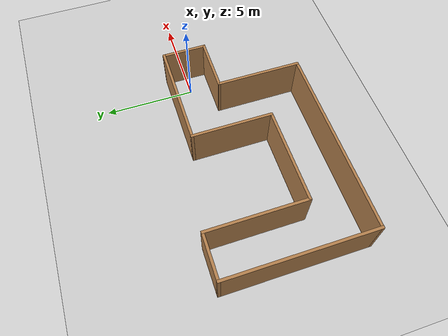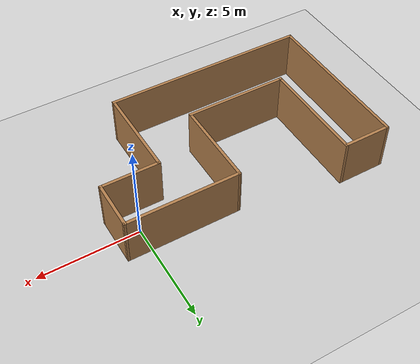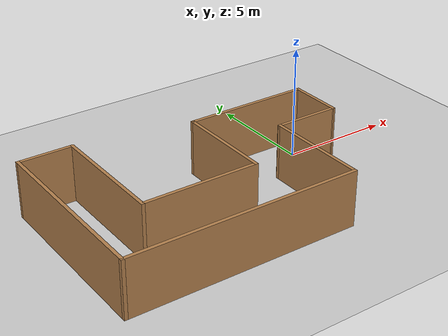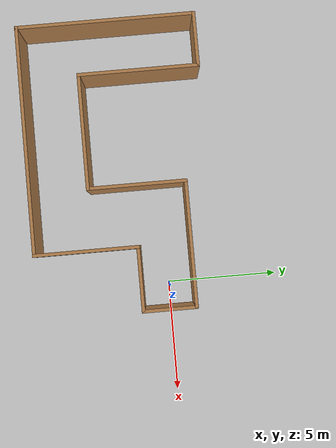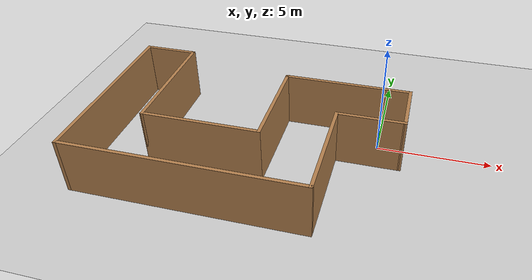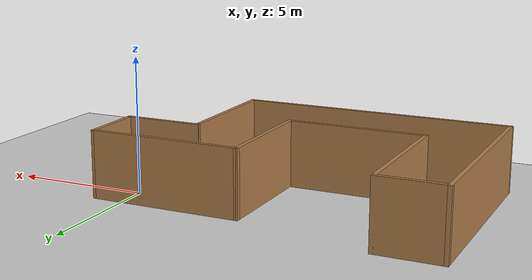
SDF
<sdf version="1.6">
 <world name="default">
  <light name="sun" type="directional">
   <pose>0 0 15 0 -0 0</pose>
   <diffuse>1 1 1 1</diffuse>
   <specular>0.1 0.1 0.1 1</specular>
   <attenuation>
    <range>1000</range>
    <constant>0.9</constant>
    <linear>0.01</linear>
    <quadratic>0.001</quadratic>
   </attenuation>
   <direction>-0.5 0.5 -1</direction>
  </light>
  <model name="ground_plane">
   <static>1</static>
   <link name="link">
    <collision name="collision">
     <geometry><plane><normal>0 0 1</normal><size>100 100</size></plane></geometry>
     <surface><friction><ode><mu>100</mu><mu2>50</mu2></ode></friction></surface>
    </collision>
    <visual name="visual">
     <transparency>1</transparency>
     <cast_shadows>0</cast_shadows>
     <geometry><plane><normal>0 0 1</normal><size>100 100</size></plane></geometry>
     <material>
      <script><uri>file://media/materials/scripts/gazebo.material</uri><name>Gazebo/Grey</name></script>
     </material>
    </visual>
   </link>
  </model>
  <gravity>0 0 -9.8</gravity>
  <magnetic_field>6e-06 2.3e-05 -4.2e-05</magnetic_field>
  <atmosphere type="adiabatic"/>
  <physics name="default_physics" default="0" type="ode">
   <max_step_size>0.001</max_step_size>
   <real_time_factor>1</real_time_factor>
   <real_time_update_rate>1000</real_time_update_rate>
  </physics>
  <scene><ambient>0.4 0.4 0.4 1</ambient><background>0.7 0.7 0.7 1</background><shadows>1</shadows></scene>
  <spherical_coordinates>
   <surface_model>EARTH_WGS84</surface_model>
   <latitude_deg>0</latitude_deg>
   <longitude_deg>0</longitude_deg>
   <elevation>0</elevation>
   <heading_deg>0</heading_deg>
  </spherical_coordinates>
  <model name="home_service_robot">
   <pose>-5.40882 -1.86503 0 0 -0 0</pose>
   <link name="Wall_12">
    <collision name="Wall_12_Collision">
     <geometry><box><size>8.10047 0.15 2.5</size></box></geometry>
     <pose>0 0 1.25 0 -0 0</pose>
    </collision>
    <visual name="Wall_12_Visual">
     <pose>0 0 1.25 0 -0 0</pose>
     <geometry><box><size>8.10047 0.15 2.5</size></box></geometry>
     <material>
      <script><uri>file://media/materials/scripts/gazebo.material</uri><name>Gazebo/Wood</name></script>
      <ambient>1 1 1 1</ambient>
     </material>
    </visual>
    <pose>-6.52488 0 0 0 -0 1.57079</pose>
   </link>
   <link name="Wall_13">
    <collision name="Wall_13_Collision">
     <geometry><box><size>2.5 0.15 2.5</size></box></geometry>
     <pose>0 0 1.25 0 -0 0</pose>
    </collision>
    <visual name="Wall_13_Visual">
     <pose>0 0 1.25 0 -0 0</pose>
     <geometry><box><size>2.5 0.15 2.5</size></box></geometry>
     <material>
      <script><uri>file://media/materials/scripts/gazebo.material</uri><name>Gazebo/Wood</name></script>
      <ambient>1 1 1 1</ambient>
     </material>
    </visual>
    <pose>-5.34986 3.97523 0 0 -0 0</pose>
   </link>
   <link name="Wall_14">
    <collision name="Wall_14_Collision">
     <geometry><box><size>5.5 0.15 2.5</size></box></geometry>
     <pose>0 0 1.25 0 -0 0</pose>
    </collision>
    <visual name="Wall_14_Visual">
     <pose>0 0 1.25 0 -0 0</pose>
     <geometry><box><size>5.5 0.15 2.5</size></box></geometry>
     <material>
      <script><uri>file://media/materials/scripts/gazebo.material</uri><name>Gazebo/Wood</name></script>
      <ambient>1 1 1 1</ambient>
     </material>
    </visual>
    <pose>-4.17486 1.30023 0 0 0 -1.5708</pose>
   </link>
   <link name="Wall_15">
    <collision name="Wall_15_Collision">
     <geometry><box><size>5.25 0.15 2.5</size></box></geometry>
     <pose>0 0 1.25 0 -0 0</pose>
    </collision>
    <visual name="Wall_15_Visual">
     <pose>0 0 1.25 0 -0 0</pose>
     <geometry><box><size>5.25 0.15 2.5</size></box></geometry>
     <material>
      <script><uri>file://media/materials/scripts/gazebo.material</uri><name>Gazebo/Wood</name></script>
      <ambient>1 1 1 1</ambient>
     </material>
    </visual>
    <pose>-1.62486 -1.37477 0 0 -0 0</pose>
   </link>
   <link name="Wall_16">
    <collision name="Wall_16_Collision">
     <geometry><box><size>4.5 0.15 2.5</size></box></geometry>
     <pose>0 0 1.25 0 -0 0</pose>
    </collision>
    <visual name="Wall_16_Visual">
     <pose>0 0 1.25 0 -0 0</pose>
     <geometry><box><size>4.5 0.15 2.5</size></box></geometry>
     <material>
      <script><uri>file://media/materials/scripts/gazebo.material</uri><name>Gazebo/Wood</name></script>
      <ambient>1 1 1 1</ambient>
     </material>
    </visual>
    <pose>0.92514 0.800234 0 0 -0 1.5708</pose>
   </link>
   <link name="Wall_17">
    <collision name="Wall_17_Collision">
     <geometry><box><size>5.75 0.15 2.5</size></box></geometry>
     <pose>0 0 1.25 0 -0 0</pose>
    </collision>
    <visual name="Wall_17_Visual">
     <pose>0 0 1.25 0 -0 0</pose>
     <geometry><box><size>5.75 0.15 2.5</size></box></geometry>
     <material>
      <script><uri>file://media/materials/scripts/gazebo.material</uri><name>Gazebo/Wood</name></script>
      <ambient>1 1 1 1</ambient>
     </material>
    </visual>
    <pose>3.72512 2.975 0 0 0 -8.3e-05</pose>
   </link>
   <link name="Wall_18">
    <collision name="Wall_18_Collision">
     <geometry><box><size>2.5 0.15 2.5</size></box></geometry>
     <pose>0 0 1.25 0 -0 0</pose>
    </collision>
    <visual name="Wall_18_Visual">
     <pose>0 0 1.25 0 -0 0</pose>
     <geometry><box><size>2.5 0.15 2.5</size></box></geometry>
     <material>
      <script><uri>file://media/materials/scripts/gazebo.material</uri><name>Gazebo/Wood</name></script>
      <ambient>1 1 1 1</ambient>
     </material>
    </visual>
    <pose>6.52511 1.79977 0 0 0 -1.5708</pose>
   </link>
   <link name="Wall_19">
    <collision name="Wall_19_Collision">
     <geometry><box><size>3 0.15 2.5</size></box></geometry>
     <pose>0 0 1.25 0 -0 0</pose>
    </collision>
    <visual name="Wall_19_Visual">
     <pose>0 0 1.25 0 -0 0</pose>
     <geometry><box><size>3 0.15 2.5</size></box></geometry>
     <material>
      <script><uri>file://media/materials/scripts/gazebo.material</uri><name>Gazebo/Wood</name></script>
      <ambient>1 1 1 1</ambient>
     </material>
    </visual>
    <pose>5.10012 0.625 0 0 -0 3.14143</pose>
   </link>
   <link name="Wall_20">
    <collision name="Wall_20_Collision">
     <geometry><box><size>4.75 0.15 2.5</size></box></geometry>
     <pose>0 0 1.25 0 -0 0</pose>
    </collision>
    <visual name="Wall_20_Visual">
     <pose>0 0 1.25 0 -0 0</pose>
     <geometry><box><size>4.75 0.15 2.5</size></box></geometry>
     <material>
      <script><uri>file://media/materials/scripts/gazebo.material</uri><name>Gazebo/Wood</name></script>
      <ambient>1 1 1 1</ambient>
     </material>
    </visual>
    <pose>3.67512 -1.675 0 0 0 -1.5708</pose>
   </link>
   <link name="Wall_21">
    <collision name="Wall_21_Collision">
     <geometry><box><size>10.3505 0.15 2.5</size></box></geometry>
     <pose>0 0 1.25 0 -0 0</pose>
    </collision>
    <visual name="Wall_21_Visual">
     <pose>0 0 1.25 0 -0 0</pose>
     <geometry><box><size>10.3505 0.15 2.5</size></box></geometry>
     <material>
      <script><uri>file://media/materials/scripts/gazebo.material</uri><name>Gazebo/Wood</name></script>
      <ambient>1 1 1 1</ambient>
     </material>
    </visual>
    <pose>-1.42489 -3.97523 0 0 -0 3.14159</pose>
   </link>
   <static>1</static>
  </model>
 </world>
</sdf>
